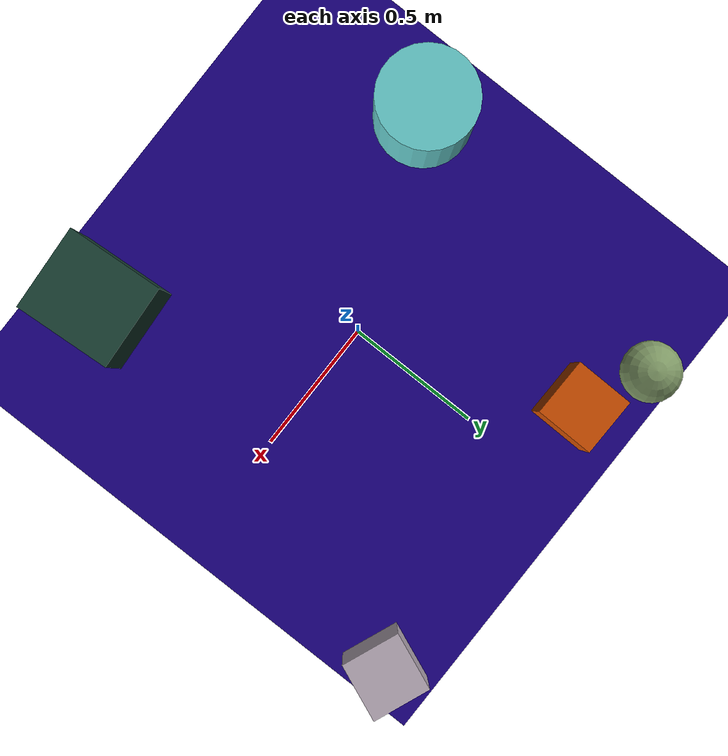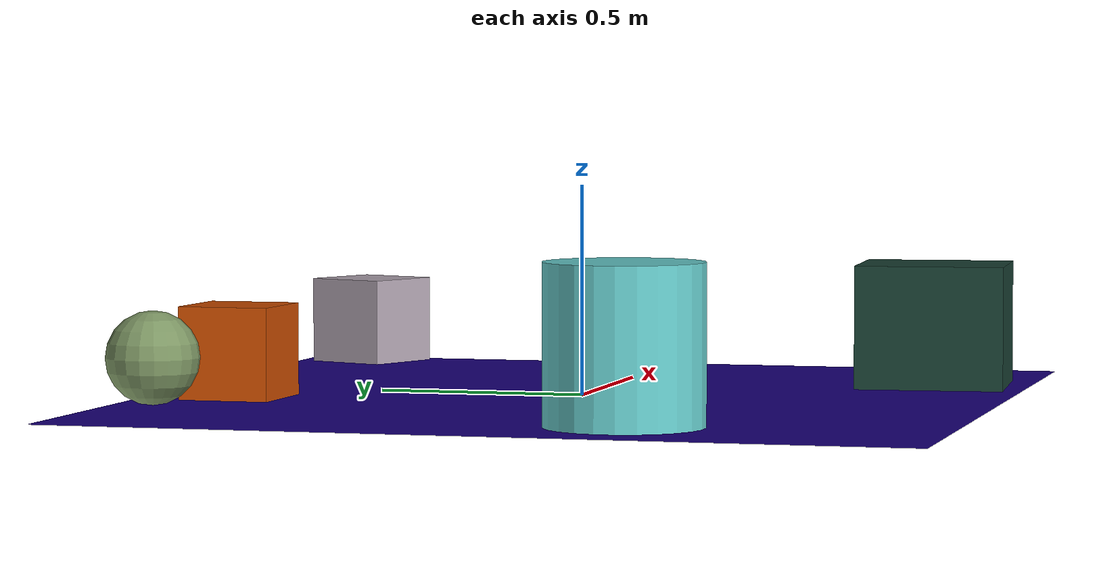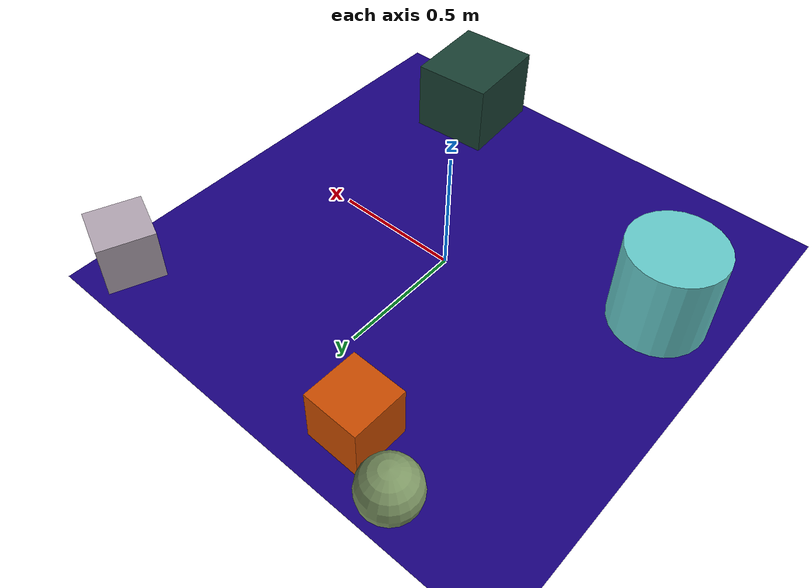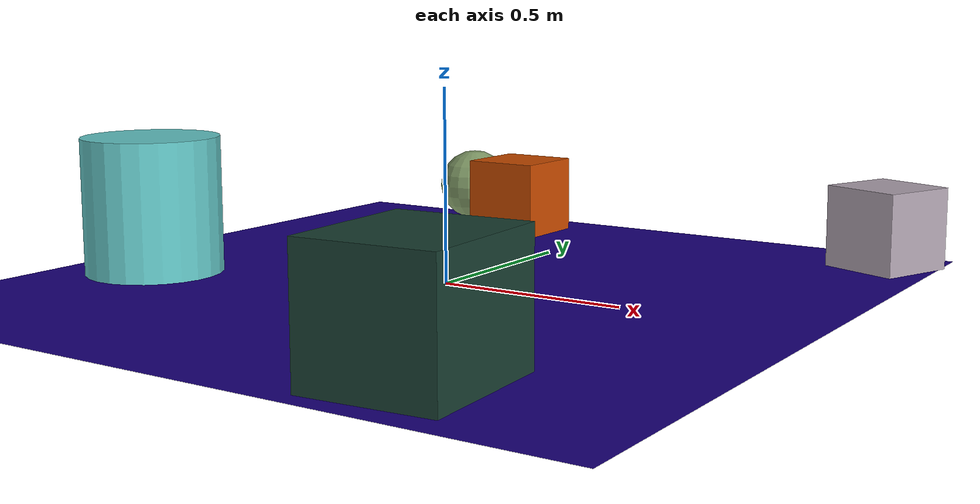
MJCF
<mujoco>
   <asset>
<texture type="skybox" builtin="gradient" rgb1="0.1 0.7 1.0" rgb2="0.6 1.0 0.1" width="256" height="256"/>
<texture name="gradient_0" builtin="gradient" rgb1="0.8 0.3 0.6" rgb2="0.2 0.9 0.2" width="200" height="200"/>
<texture name="checker_1" builtin="checker" rgb1="0.0 0.3 0.2" rgb2="0.2 0.2 0.2" width="200" height="200"/>
<texture name="flat_2" builtin="flat" rgb1="0.8 0.3 0.0" rgb2="0.8 0.3 0.0"  width="200" height="200"/>
<texture name="checker_3" builtin="checker" rgb1="0.5 0.5 0.5" rgb2="0.9 0.8 0.9" width="200" height="200"/>
<texture name="checker_4" builtin="checker" rgb1="0.1 0.6 0.9" rgb2="0.7 1.0 0.7" width="200" height="200"/><material name="gradient_0_mat" reflectance="0" texture="gradient_0" texuniform="true"/>
<material name="checker_1_mat" reflectance="0" texrepeat="9 9" texture="checker_1" texuniform="false" />
<material name="flat_2_mat" reflectance="0" texture="flat_2" texuniform="true"/>
<material name="checker_3_mat" reflectance="0" texrepeat="10 10" texture="checker_3" texuniform="false" />
<material name="checker_4_mat" reflectance="0" texrepeat="6 6" texture="checker_4" texuniform="false" />
   </asset>

   <worldbody>
      <light diffuse=".9 .9 .9" pos="0 0 3" dir="0 0 -1"/>
     <geom type="plane" size="1 1 0.1" rgba="0.1 0.0 0.5 1"/>
<geom type="sphere" pos="-0.52 0.89 0.11" size="0.11 0.11 0.11" material="gradient_0_mat" euler="0 0 5" />
<geom type="box" pos="0.48 -0.77 0.15" size="0.16 0.18 0.15" material="checker_1_mat" euler="0 0 4" />
<geom type="box" pos="-0.27 0.77 0.11" size="0.11 0.11 0.11" material="flat_2_mat" euler="0 0 89" />
<geom type="box" pos="0.87 0.81 0.11" size="0.11 0.11 0.11" material="checker_3_mat" euler="0 0 68" />
<geom type="cylinder" pos="-0.74 -0.29 0.18" size="0.18 0.18 0.18" material="checker_4_mat" euler="0 0 68" /><camera euler="60 0 180" fovy="60" name="camera1" pos="-0.2 -1.5 1"></camera>   </worldbody>
</mujoco>
